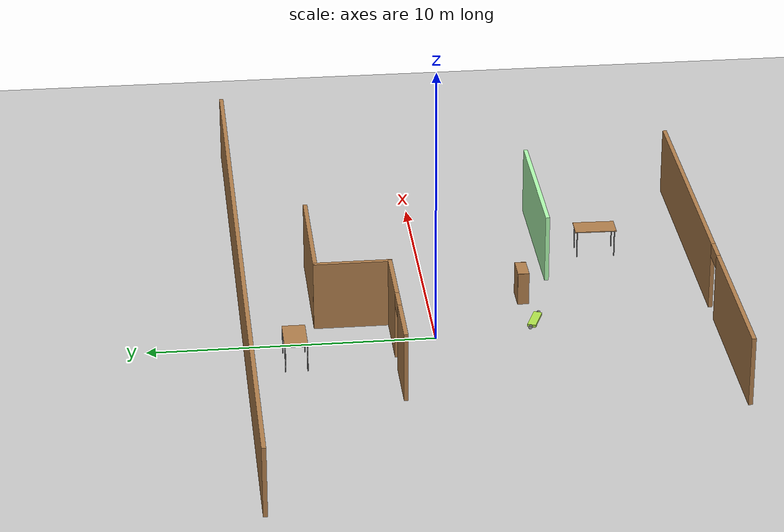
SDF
<sdf version="1.7">
 <world name="default">
  <model name="ground_plane">
   <static>1</static>
   <link name="link">
    <collision name="collision">
     <geometry><plane><normal>0 0 1</normal><size>100 100</size></plane></geometry>
     <surface>
      <contact><collide_bitmask>65535</collide_bitmask></contact>
      <friction><ode><mu>100</mu><mu2>50</mu2></ode></friction>
     </surface>
    </collision>
    <visual name="visual">
     <cast_shadows>0</cast_shadows>
     <geometry><plane><normal>0 0 1</normal><size>100 100</size></plane></geometry>
     <material>
      <script><uri>file://media/materials/scripts/gazebo.material</uri><name>Gazebo/Grey</name></script>
     </material>
    </visual>
   </link>
  </model>
  <model name="table">
   <model name="table">
    <static>1</static>
    <link name="link">
     <collision name="surface">
      <pose>0 0 1 0 -0 0</pose>
      <geometry><box><size>1.5 0.8 0.03</size></box></geometry>
      <surface><friction><ode><mu>0.6</mu><mu2>0.6</mu2></ode></friction></surface>
     </collision>
     <visual name="visual1">
      <pose>0 0 1 0 -0 0</pose>
      <geometry><box><size>1.5 0.8 0.03</size></box></geometry>
      <material>
       <script><uri>file://media/materials/scripts/gazebo.material</uri><name>Gazebo/Wood</name></script>
      </material>
     </visual>
     <collision name="front_left_leg">
      <pose>0.68 0.38 0.5 0 -0 0</pose>
      <geometry><cylinder><radius>0.02</radius><length>1</length></cylinder></geometry>
     </collision>
     <visual name="front_left_leg">
      <pose>0.68 0.38 0.5 0 -0 0</pose>
      <geometry><cylinder><radius>0.02</radius><length>1</length></cylinder></geometry>
      <material>
       <script><uri>file://media/materials/scripts/gazebo.material</uri><name>Gazebo/Grey</name></script>
      </material>
     </visual>
     <collision name="front_right_leg">
      <pose>0.68 -0.38 0.5 0 -0 0</pose>
      <geometry><cylinder><radius>0.02</radius><length>1</length></cylinder></geometry>
     </collision>
     <visual name="front_right_leg">
      <pose>0.68 -0.38 0.5 0 -0 0</pose>
      <geometry><cylinder><radius>0.02</radius><length>1</length></cylinder></geometry>
      <material>
       <script><uri>file://media/materials/scripts/gazebo.material</uri><name>Gazebo/Grey</name></script>
      </material>
     </visual>
     <collision name="back_right_leg">
      <pose>-0.68 -0.38 0.5 0 -0 0</pose>
      <geometry><cylinder><radius>0.02</radius><length>1</length></cylinder></geometry>
     </collision>
     <visual name="back_right_leg">
      <pose>-0.68 -0.38 0.5 0 -0 0</pose>
      <geometry><cylinder><radius>0.02</radius><length>1</length></cylinder></geometry>
      <material>
       <script><uri>file://media/materials/scripts/gazebo.material</uri><name>Gazebo/Grey</name></script>
      </material>
     </visual>
     <collision name="back_left_leg">
      <pose>-0.68 0.38 0.5 0 -0 0</pose>
      <geometry><cylinder><radius>0.02</radius><length>1</length></cylinder></geometry>
     </collision>
     <visual name="back_left_leg">
      <pose>-0.68 0.38 0.5 0 -0 0</pose>
      <geometry><cylinder><radius>0.02</radius><length>1</length></cylinder></geometry>
      <material>
       <script><uri>file://media/materials/scripts/gazebo.material</uri><name>Gazebo/Grey</name></script>
      </material>
     </visual>
    </link>
   </model>
   <static>0</static>
   <pose>-1.14837 4.95371 0 0 -0 0</pose>
  </model>
  <model name="table_clone">
   <model name="table">
    <static>1</static>
    <link name="link">
     <collision name="surface">
      <pose>0 0 1 0 -0 0</pose>
      <geometry><box><size>1.5 0.8 0.03</size></box></geometry>
      <surface><friction><ode><mu>0.6</mu><mu2>0.6</mu2></ode></friction></surface>
     </collision>
     <visual name="visual1">
      <pose>0 0 1 0 -0 0</pose>
      <geometry><box><size>1.5 0.8 0.03</size></box></geometry>
      <material>
       <script><uri>file://media/materials/scripts/gazebo.material</uri><name>Gazebo/Wood</name></script>
      </material>
     </visual>
     <collision name="front_left_leg">
      <pose>0.68 0.38 0.5 0 -0 0</pose>
      <geometry><cylinder><radius>0.02</radius><length>1</length></cylinder></geometry>
     </collision>
     <visual name="front_left_leg">
      <pose>0.68 0.38 0.5 0 -0 0</pose>
      <geometry><cylinder><radius>0.02</radius><length>1</length></cylinder></geometry>
      <material>
       <script><uri>file://media/materials/scripts/gazebo.material</uri><name>Gazebo/Grey</name></script>
      </material>
     </visual>
     <collision name="front_right_leg">
      <pose>0.68 -0.38 0.5 0 -0 0</pose>
      <geometry><cylinder><radius>0.02</radius><length>1</length></cylinder></geometry>
     </collision>
     <visual name="front_right_leg">
      <pose>0.68 -0.38 0.5 0 -0 0</pose>
      <geometry><cylinder><radius>0.02</radius><length>1</length></cylinder></geometry>
      <material>
       <script><uri>file://media/materials/scripts/gazebo.material</uri><name>Gazebo/Grey</name></script>
      </material>
     </visual>
     <collision name="back_right_leg">
      <pose>-0.68 -0.38 0.5 0 -0 0</pose>
      <geometry><cylinder><radius>0.02</radius><length>1</length></cylinder></geometry>
     </collision>
     <visual name="back_right_leg">
      <pose>-0.68 -0.38 0.5 0 -0 0</pose>
      <geometry><cylinder><radius>0.02</radius><length>1</length></cylinder></geometry>
      <material>
       <script><uri>file://media/materials/scripts/gazebo.material</uri><name>Gazebo/Grey</name></script>
      </material>
     </visual>
     <collision name="back_left_leg">
      <pose>-0.68 0.38 0.5 0 -0 0</pose>
      <geometry><cylinder><radius>0.02</radius><length>1</length></cylinder></geometry>
     </collision>
     <visual name="back_left_leg">
      <pose>-0.68 0.38 0.5 0 -0 0</pose>
      <geometry><cylinder><radius>0.02</radius><length>1</length></cylinder></geometry>
      <material>
       <script><uri>file://media/materials/scripts/gazebo.material</uri><name>Gazebo/Grey</name></script>
      </material>
     </visual>
    </link>
   </model>
   <static>0</static>
   <pose>5.99818 -6.4942 0 0 -0 1.5488</pose>
  </model>
  <model name="bookshelf">
   <model name="bookshelf">
    <static>1</static>
    <link name="link">
     <inertial><mass>1</mass></inertial>
     <collision name="back">
      <pose>0 0.005 0.6 0 -0 0</pose>
      <geometry><box><size>0.9 0.01 1.2</size></box></geometry>
     </collision>
     <visual name="visual1">
      <pose>0 0.005 0.6 0 -0 0</pose>
      <geometry><box><size>0.9 0.01 1.2</size></box></geometry>
      <material>
       <script><uri>file://media/materials/scripts/gazebo.material</uri><name>Gazebo/Wood</name></script>
      </material>
     </visual>
     <collision name="left_side">
      <pose>0.45 -0.195 0.6 0 -0 0</pose>
      <geometry><box><size>0.02 0.4 1.2</size></box></geometry>
     </collision>
     <visual name="visual2">
      <pose>0.45 -0.195 0.6 0 -0 0</pose>
      <geometry><box><size>0.02 0.4 1.2</size></box></geometry>
      <material>
       <script><uri>file://media/materials/scripts/gazebo.material</uri><name>Gazebo/Wood</name></script>
      </material>
     </visual>
     <collision name="right_side">
      <pose>-0.45 -0.195 0.6 0 -0 0</pose>
      <geometry><box><size>0.02 0.4 1.2</size></box></geometry>
     </collision>
     <visual name="visual3">
      <pose>-0.45 -0.195 0.6 0 -0 0</pose>
      <geometry><box><size>0.02 0.4 1.2</size></box></geometry>
      <material>
       <script><uri>file://media/materials/scripts/gazebo.material</uri><name>Gazebo/Wood</name></script>
      </material>
     </visual>
     <collision name="bottom">
      <pose>0 -0.195 0.03 0 -0 0</pose>
      <geometry><box><size>0.88 0.4 0.06</size></box></geometry>
     </collision>
     <visual name="visual4">
      <pose>0 -0.195 0.03 0 -0 0</pose>
      <geometry><box><size>0.88 0.4 0.06</size></box></geometry>
      <material>
       <script><uri>file://media/materials/scripts/gazebo.material</uri><name>Gazebo/Wood</name></script>
      </material>
     </visual>
     <collision name="top">
      <pose>0 -0.195 1.19 0 -0 0</pose>
      <geometry><box><size>0.88 0.4 0.02</size></box></geometry>
     </collision>
     <visual name="visual5">
      <pose>0 -0.195 1.19 0 -0 0</pose>
      <geometry><box><size>0.88 0.4 0.02</size></box></geometry>
      <material>
       <script><uri>file://media/materials/scripts/gazebo.material</uri><name>Gazebo/Wood</name></script>
      </material>
     </visual>
     <collision name="low_shelf">
      <pose>0 -0.195 0.43 0 -0 0</pose>
      <geometry><box><size>0.88 0.4 0.02</size></box></geometry>
     </collision>
     <visual name="visual6">
      <pose>0 -0.195 0.43 0 -0 0</pose>
      <geometry><box><size>0.88 0.4 0.02</size></box></geometry>
      <material>
       <script><uri>file://media/materials/scripts/gazebo.material</uri><name>Gazebo/Wood</name></script>
      </material>
     </visual>
     <collision name="high_shelf">
      <pose>0 -0.195 0.8 0 -0 0</pose>
      <geometry><box><size>0.88 0.4 0.02</size></box></geometry>
     </collision>
     <visual name="visual7">
      <pose>0 -0.195 0.8 0 -0 0</pose>
      <geometry><box><size>0.88 0.4 0.02</size></box></geometry>
      <material>
       <script><uri>file://media/materials/scripts/gazebo.material</uri><name>Gazebo/Wood</name></script>
      </material>
     </visual>
    </link>
    <pose>-4e-06 4e-06 0 0 -0 0</pose>
   </model>
   <static>0</static>
   <pose>2.66139 -3.16627 0 0 -0 0</pose>
  </model>
  <model name="floorplan">
   <link name="Wall_21">
    <pose>2.55 8.24393 0 0 -0 3.14159</pose>
    <visual name="Wall_21_Visual">
     <pose>0 0 1.25 0 -0 0</pose>
     <geometry><box><size>26.5 0.15 2.5</size></box></geometry>
     <material>
      <script><uri>file://media/materials/scripts/gazebo.material</uri><name>Gazebo/Wood</name></script>
      <ambient>0.435294 0.796078 0.67451 1</ambient>
      <shader type="pixel"/>
     </material>
     <meta><layer>0</layer></meta>
    </visual>
    <collision name="Wall_21_Collision">
     <pose>0 0 1.25 0 -0 0</pose>
     <geometry><box><size>26.5 0.15 2.5</size></box></geometry>
     <surface>
      <friction>
       <ode><mu>1</mu><mu2>1</mu2><fdir1>0 0 0</fdir1><slip1>0</slip1><slip2>0</slip2></ode>
       <torsional>
        <coefficient>1</coefficient>
        <patch_radius>0</patch_radius>
        <surface_radius>0</surface_radius>
        <use_patch_radius>1</use_patch_radius>
        <ode><slip>0</slip></ode>
       </torsional>
      </friction>
      <bounce><restitution_coefficient>0</restitution_coefficient><threshold>1e+06</threshold></bounce>
      <contact>
       <collide_without_contact>0</collide_without_contact>
       <collide_without_contact_bitmask>1</collide_without_contact_bitmask>
       <collide_bitmask>1</collide_bitmask>
       <ode>
        <soft_cfm>0</soft_cfm>
        <soft_erp>0.2</soft_erp>
        <kp>1e+13</kp>
        <kd>1</kd>
        <max_vel>0.01</max_vel>
        <min_depth>0</min_depth>
       </ode>
       <bullet>
        <split_impulse>1</split_impulse>
        <split_impulse_penetration_threshold>-0.01</split_impulse_penetration_threshold>
        <soft_cfm>0</soft_cfm>
        <soft_erp>0.2</soft_erp>
        <kp>1e+13</kp>
        <kd>1</kd>
       </bullet>
      </contact>
     </surface>
    </collision>
   </link>
   <link name="Wall_34">
    <pose>-1.13815 3.11707 0 0 -0 0</pose>
    <visual name="Wall_34_Visual_0">
     <pose>-1.68834 0 1.25 0 -0 0</pose>
     <geometry><box><size>2.12332 0.15 2.5</size></box></geometry>
     <material>
      <script><uri>file://media/materials/scripts/gazebo.material</uri><name>Gazebo/Wood</name></script>
      <ambient>1 1 1 1</ambient>
      <shader type="pixel"/>
     </material>
     <meta><layer>0</layer></meta>
    </visual>
    <visual name="Wall_34_Visual_1">
     <pose>1.51166 0 1.25 0 -0 0</pose>
     <geometry><box><size>2.47668 0.15 2.5</size></box></geometry>
     <material>
      <script><uri>file://media/materials/scripts/gazebo.material</uri><name>Gazebo/Wood</name></script>
      <ambient>1 1 1 1</ambient>
      <shader type="pixel"/>
     </material>
     <meta><layer>0</layer></meta>
    </visual>
    <visual name="Wall_34_Visual_2">
     <pose>-0.17668 0 2.25 0 -0 0</pose>
     <geometry><box><size>0.9 0.15 0.5</size></box></geometry>
     <material>
      <script><uri>file://media/materials/scripts/gazebo.material</uri><name>Gazebo/Wood</name></script>
      <ambient>1 1 1 1</ambient>
      <shader type="pixel"/>
     </material>
     <meta><layer>0</layer></meta>
    </visual>
    <collision name="Wall_34_Collision_0">
     <pose>-1.68834 0 1.25 0 -0 0</pose>
     <geometry><box><size>2.12332 0.15 2.5</size></box></geometry>
     <surface>
      <friction>
       <ode><mu>1</mu><mu2>1</mu2><fdir1>0 0 0</fdir1><slip1>0</slip1><slip2>0</slip2></ode>
       <torsional>
        <coefficient>1</coefficient>
        <patch_radius>0</patch_radius>
        <surface_radius>0</surface_radius>
        <use_patch_radius>1</use_patch_radius>
        <ode><slip>0</slip></ode>
       </torsional>
      </friction>
      <bounce><restitution_coefficient>0</restitution_coefficient><threshold>1e+06</threshold></bounce>
      <contact>
       <collide_without_contact>0</collide_without_contact>
       <collide_without_contact_bitmask>1</collide_without_contact_bitmask>
       <collide_bitmask>1</collide_bitmask>
       <ode>
        <soft_cfm>0</soft_cfm>
        <soft_erp>0.2</soft_erp>
        <kp>1e+13</kp>
        <kd>1</kd>
        <max_vel>0.01</max_vel>
        <min_depth>0</min_depth>
       </ode>
       <bullet>
        <split_impulse>1</split_impulse>
        <split_impulse_penetration_threshold>-0.01</split_impulse_penetration_threshold>
        <soft_cfm>0</soft_cfm>
        <soft_erp>0.2</soft_erp>
        <kp>1e+13</kp>
        <kd>1</kd>
       </bullet>
      </contact>
     </surface>
    </collision>
    <collision name="Wall_34_Collision_1">
     <pose>1.51166 0 1.25 0 -0 0</pose>
     <geometry><box><size>2.47668 0.15 2.5</size></box></geometry>
     <surface>
      <friction>
       <ode><mu>1</mu><mu2>1</mu2><fdir1>0 0 0</fdir1><slip1>0</slip1><slip2>0</slip2></ode>
       <torsional>
        <coefficient>1</coefficient>
        <patch_radius>0</patch_radius>
        <surface_radius>0</surface_radius>
        <use_patch_radius>1</use_patch_radius>
        <ode><slip>0</slip></ode>
       </torsional>
      </friction>
      <bounce><restitution_coefficient>0</restitution_coefficient><threshold>1e+06</threshold></bounce>
      <contact>
       <collide_without_contact>0</collide_without_contact>
       <collide_without_contact_bitmask>1</collide_without_contact_bitmask>
       <collide_bitmask>1</collide_bitmask>
       <ode>
        <soft_cfm>0</soft_cfm>
        <soft_erp>0.2</soft_erp>
        <kp>1e+13</kp>
        <kd>1</kd>
        <max_vel>0.01</max_vel>
        <min_depth>0</min_depth>
       </ode>
       <bullet>
        <split_impulse>1</split_impulse>
        <split_impulse_penetration_threshold>-0.01</split_impulse_penetration_threshold>
        <soft_cfm>0</soft_cfm>
        <soft_erp>0.2</soft_erp>
        <kp>1e+13</kp>
        <kd>1</kd>
       </bullet>
      </contact>
     </surface>
    </collision>
    <collision name="Wall_34_Collision_2">
     <pose>-0.17668 0 2.25 0 -0 0</pose>
     <geometry><box><size>0.9 0.15 0.5</size></box></geometry>
     <surface>
      <friction>
       <ode><mu>1</mu><mu2>1</mu2><fdir1>0 0 0</fdir1><slip1>0</slip1><slip2>0</slip2></ode>
       <torsional>
        <coefficient>1</coefficient>
        <patch_radius>0</patch_radius>
        <surface_radius>0</surface_radius>
        <use_patch_radius>1</use_patch_radius>
        <ode><slip>0</slip></ode>
       </torsional>
      </friction>
      <bounce><restitution_coefficient>0</restitution_coefficient><threshold>1e+06</threshold></bounce>
      <contact>
       <collide_without_contact>0</collide_without_contact>
       <collide_without_contact_bitmask>1</collide_without_contact_bitmask>
       <collide_bitmask>1</collide_bitmask>
       <ode>
        <soft_cfm>0</soft_cfm>
        <soft_erp>0.2</soft_erp>
        <kp>1e+13</kp>
        <kd>1</kd>
        <max_vel>0.01</max_vel>
        <min_depth>0</min_depth>
       </ode>
       <bullet>
        <split_impulse>1</split_impulse>
        <split_impulse_penetration_threshold>-0.01</split_impulse_penetration_threshold>
        <soft_cfm>0</soft_cfm>
        <soft_erp>0.2</soft_erp>
        <kp>1e+13</kp>
        <kd>1</kd>
       </bullet>
      </contact>
     </surface>
    </collision>
   </link>
   <link name="Wall_35">
    <pose>1.53685 4.41707 0 0 -0 1.5708</pose>
    <visual name="Wall_35_Visual">
     <pose>0 0 1.25 0 -0 0</pose>
     <geometry><box><size>2.75 0.15 2.5</size></box></geometry>
     <material>
      <script><uri>file://media/materials/scripts/gazebo.material</uri><name>Gazebo/Wood</name></script>
      <ambient>1 1 1 1</ambient>
      <shader type="pixel"/>
     </material>
     <meta><layer>0</layer></meta>
    </visual>
    <collision name="Wall_35_Collision">
     <pose>0 0 1.25 0 -0 0</pose>
     <geometry><box><size>2.75 0.15 2.5</size></box></geometry>
     <surface>
      <friction>
       <ode><mu>1</mu><mu2>1</mu2><fdir1>0 0 0</fdir1><slip1>0</slip1><slip2>0</slip2></ode>
       <torsional>
        <coefficient>1</coefficient>
        <patch_radius>0</patch_radius>
        <surface_radius>0</surface_radius>
        <use_patch_radius>1</use_patch_radius>
        <ode><slip>0</slip></ode>
       </torsional>
      </friction>
      <bounce><restitution_coefficient>0</restitution_coefficient><threshold>1e+06</threshold></bounce>
      <contact>
       <collide_without_contact>0</collide_without_contact>
       <collide_without_contact_bitmask>1</collide_without_contact_bitmask>
       <collide_bitmask>1</collide_bitmask>
       <ode>
        <soft_cfm>0</soft_cfm>
        <soft_erp>0.2</soft_erp>
        <kp>1e+13</kp>
        <kd>1</kd>
        <max_vel>0.01</max_vel>
        <min_depth>0</min_depth>
       </ode>
       <bullet>
        <split_impulse>1</split_impulse>
        <split_impulse_penetration_threshold>-0.01</split_impulse_penetration_threshold>
        <soft_cfm>0</soft_cfm>
        <soft_erp>0.2</soft_erp>
        <kp>1e+13</kp>
        <kd>1</kd>
       </bullet>
      </contact>
     </surface>
    </collision>
   </link>
   <link name="Wall_36">
    <pose>3.83685 5.71707 0 0 -0 0</pose>
    <visual name="Wall_36_Visual">
     <pose>0 0 1.25 0 -0 0</pose>
     <geometry><box><size>4.75 0.15 2.5</size></box></geometry>
     <material>
      <script><uri>file://media/materials/scripts/gazebo.material</uri><name>Gazebo/Wood</name></script>
      <ambient>1 1 1 1</ambient>
      <shader type="pixel"/>
     </material>
     <meta><layer>0</layer></meta>
    </visual>
    <collision name="Wall_36_Collision">
     <pose>0 0 1.25 0 -0 0</pose>
     <geometry><box><size>4.75 0.15 2.5</size></box></geometry>
     <surface>
      <friction>
       <ode><mu>1</mu><mu2>1</mu2><fdir1>0 0 0</fdir1><slip1>0</slip1><slip2>0</slip2></ode>
       <torsional>
        <coefficient>1</coefficient>
        <patch_radius>0</patch_radius>
        <surface_radius>0</surface_radius>
        <use_patch_radius>1</use_patch_radius>
        <ode><slip>0</slip></ode>
       </torsional>
      </friction>
      <bounce><restitution_coefficient>0</restitution_coefficient><threshold>1e+06</threshold></bounce>
      <contact>
       <collide_without_contact>0</collide_without_contact>
       <collide_without_contact_bitmask>1</collide_without_contact_bitmask>
       <collide_bitmask>1</collide_bitmask>
       <ode>
        <soft_cfm>0</soft_cfm>
        <soft_erp>0.2</soft_erp>
        <kp>1e+13</kp>
        <kd>1</kd>
        <max_vel>0.01</max_vel>
        <min_depth>0</min_depth>
       </ode>
       <bullet>
        <split_impulse>1</split_impulse>
        <split_impulse_penetration_threshold>-0.01</split_impulse_penetration_threshold>
        <soft_cfm>0</soft_cfm>
        <soft_erp>0.2</soft_erp>
        <kp>1e+13</kp>
        <kd>1</kd>
       </bullet>
      </contact>
     </surface>
    </collision>
   </link>
   <link name="Wall_43">
    <pose>7.10197 -2.78983 0 0 -0 3.14159</pose>
    <inertial>
     <mass>1</mass>
     <inertia><ixx>1</ixx><ixy>0</ixy><ixz>0</ixz><iyy>1</iyy><iyz>0</iyz><izz>1</izz></inertia>
    </inertial>
    <visual name="Wall_43_Visual">
     <pose>0 0 1.25 0 -0 0</pose>
     <geometry><box><size>5.75 0.15 2.5</size></box></geometry>
     <material>
      <script><uri>file://media/materials/scripts/gazebo.material</uri><name>Gazebo/Grey</name></script>
      <ambient>1 1 1 1</ambient>
      <shader type="pixel"><normal_map>__default__</normal_map></shader>
      <diffuse>0.7 1 0.7 1</diffuse>
      <specular>0.01 1 0.01 1</specular>
      <emissive>0 1 0 1</emissive>
     </material>
     <meta><layer>0</layer></meta>
    </visual>
    <collision name="Wall_43_Collision">
     <pose>0 0 1.25 0 -0 0</pose>
     <geometry><box><size>5.75 0.15 2.5</size></box></geometry>
     <surface>
      <friction>
       <ode><mu>1</mu><mu2>1</mu2><fdir1>0 0 0</fdir1><slip1>0</slip1><slip2>0</slip2></ode>
       <torsional>
        <coefficient>1</coefficient>
        <patch_radius>0</patch_radius>
        <surface_radius>0</surface_radius>
        <use_patch_radius>1</use_patch_radius>
        <ode><slip>0</slip></ode>
       </torsional>
      </friction>
      <bounce><restitution_coefficient>0</restitution_coefficient><threshold>1e+06</threshold></bounce>
      <contact>
       <collide_without_contact>0</collide_without_contact>
       <collide_without_contact_bitmask>1</collide_without_contact_bitmask>
       <collide_bitmask>1</collide_bitmask>
       <ode>
        <soft_cfm>0</soft_cfm>
        <soft_erp>0.2</soft_erp>
        <kp>1e+13</kp>
        <kd>1</kd>
        <max_vel>0.01</max_vel>
        <min_depth>0</min_depth>
       </ode>
       <bullet>
        <split_impulse>1</split_impulse>
        <split_impulse_penetration_threshold>-0.01</split_impulse_penetration_threshold>
        <soft_cfm>0</soft_cfm>
        <soft_erp>0.2</soft_erp>
        <kp>1e+13</kp>
        <kd>1</kd>
       </bullet>
      </contact>
     </surface>
    </collision>
   </link>
   <link name="Wall_7">
    <pose>2.86483 -8.24393 0 0 -0 0</pose>
    <visual name="Wall_7_Visual_0">
     <pose>-5.20927 0 1.25 0 -0 0</pose>
     <geometry><box><size>6.08146 0.15 2.5</size></box></geometry>
     <material>
      <script><uri>file://media/materials/scripts/gazebo.material</uri><name>Gazebo/Wood</name></script>
      <ambient>0.996078 0.47451 0.0196078 1</ambient>
      <shader type="pixel"/>
     </material>
     <meta><layer>0</layer></meta>
    </visual>
    <visual name="Wall_7_Visual_1">
     <pose>3.49073 0 1.25 0 -0 0</pose>
     <geometry><box><size>9.51854 0.15 2.5</size></box></geometry>
     <material>
      <script><uri>file://media/materials/scripts/gazebo.material</uri><name>Gazebo/Wood</name></script>
      <ambient>0.996078 0.47451 0.0196078 1</ambient>
      <shader type="pixel"/>
     </material>
     <meta><layer>0</layer></meta>
    </visual>
    <visual name="Wall_7_Visual_2">
     <pose>-1.71854 0 2.25 0 -0 0</pose>
     <geometry><box><size>0.9 0.15 0.5</size></box></geometry>
     <material>
      <script><uri>file://media/materials/scripts/gazebo.material</uri><name>Gazebo/Wood</name></script>
      <ambient>0.996078 0.47451 0.0196078 1</ambient>
      <shader type="pixel"/>
     </material>
     <meta><layer>0</layer></meta>
    </visual>
    <collision name="Wall_7_Collision_0">
     <pose>-5.20927 0 1.25 0 -0 0</pose>
     <geometry><box><size>6.08146 0.15 2.5</size></box></geometry>
     <surface>
      <friction>
       <ode><mu>1</mu><mu2>1</mu2><fdir1>0 0 0</fdir1><slip1>0</slip1><slip2>0</slip2></ode>
       <torsional>
        <coefficient>1</coefficient>
        <patch_radius>0</patch_radius>
        <surface_radius>0</surface_radius>
        <use_patch_radius>1</use_patch_radius>
        <ode><slip>0</slip></ode>
       </torsional>
      </friction>
      <bounce><restitution_coefficient>0</restitution_coefficient><threshold>1e+06</threshold></bounce>
      <contact>
       <collide_without_contact>0</collide_without_contact>
       <collide_without_contact_bitmask>1</collide_without_contact_bitmask>
       <collide_bitmask>1</collide_bitmask>
       <ode>
        <soft_cfm>0</soft_cfm>
        <soft_erp>0.2</soft_erp>
        <kp>1e+13</kp>
        <kd>1</kd>
        <max_vel>0.01</max_vel>
        <min_depth>0</min_depth>
       </ode>
       <bullet>
        <split_impulse>1</split_impulse>
        <split_impulse_penetration_threshold>-0.01</split_impulse_penetration_threshold>
        <soft_cfm>0</soft_cfm>
        <soft_erp>0.2</soft_erp>
        <kp>1e+13</kp>
        <kd>1</kd>
       </bullet>
      </contact>
     </surface>
    </collision>
    <collision name="Wall_7_Collision_1">
     <pose>3.49073 0 1.25 0 -0 0</pose>
     <geometry><box><size>9.51854 0.15 2.5</size></box></geometry>
     <surface>
      <friction>
       <ode><mu>1</mu><mu2>1</mu2><fdir1>0 0 0</fdir1><slip1>0</slip1><slip2>0</slip2></ode>
       <torsional>
        <coefficient>1</coefficient>
        <patch_radius>0</patch_radius>
        <surface_radius>0</surface_radius>
        <use_patch_radius>1</use_patch_radius>
        <ode><slip>0</slip></ode>
       </torsional>
      </friction>
      <bounce><restitution_coefficient>0</restitution_coefficient><threshold>1e+06</threshold></bounce>
      <contact>
       <collide_without_contact>0</collide_without_contact>
       <collide_without_contact_bitmask>1</collide_without_contact_bitmask>
       <collide_bitmask>1</collide_bitmask>
       <ode>
        <soft_cfm>0</soft_cfm>
        <soft_erp>0.2</soft_erp>
        <kp>1e+13</kp>
        <kd>1</kd>
        <max_vel>0.01</max_vel>
        <min_depth>0</min_depth>
       </ode>
       <bullet>
        <split_impulse>1</split_impulse>
        <split_impulse_penetration_threshold>-0.01</split_impulse_penetration_threshold>
        <soft_cfm>0</soft_cfm>
        <soft_erp>0.2</soft_erp>
        <kp>1e+13</kp>
        <kd>1</kd>
       </bullet>
      </contact>
     </surface>
    </collision>
    <collision name="Wall_7_Collision_2">
     <pose>-1.71854 0 2.25 0 -0 0</pose>
     <geometry><box><size>0.9 0.15 0.5</size></box></geometry>
     <surface>
      <friction>
       <ode><mu>1</mu><mu2>1</mu2><fdir1>0 0 0</fdir1><slip1>0</slip1><slip2>0</slip2></ode>
       <torsional>
        <coefficient>1</coefficient>
        <patch_radius>0</patch_radius>
        <surface_radius>0</surface_radius>
        <use_patch_radius>1</use_patch_radius>
        <ode><slip>0</slip></ode>
       </torsional>
      </friction>
      <bounce><restitution_coefficient>0</restitution_coefficient><threshold>1e+06</threshold></bounce>
      <contact>
       <collide_without_contact>0</collide_without_contact>
       <collide_without_contact_bitmask>1</collide_without_contact_bitmask>
       <collide_bitmask>1</collide_bitmask>
       <ode>
        <soft_cfm>0</soft_cfm>
        <soft_erp>0.2</soft_erp>
        <kp>1e+13</kp>
        <kd>1</kd>
        <max_vel>0.01</max_vel>
        <min_depth>0</min_depth>
       </ode>
       <bullet>
        <split_impulse>1</split_impulse>
        <split_impulse_penetration_threshold>-0.01</split_impulse_penetration_threshold>
        <soft_cfm>0</soft_cfm>
        <soft_erp>0.2</soft_erp>
        <kp>1e+13</kp>
        <kd>1</kd>
       </bullet>
      </contact>
     </surface>
    </collision>
   </link>
   <static>1</static>
   <pose>-0.30602 -1.65373 0 0 -0 0</pose>
  </model>
  <model name="robo_clone">
   <link name="link_0">
    <inertial>
     <mass>1</mass>
     <inertia>
      <ixx>0.166667</ixx>
      <ixy>0</ixy>
      <ixz>0</ixz>
      <iyy>0.166667</iyy>
      <iyz>0</iyz>
      <izz>0.166667</izz>
     </inertia>
    </inertial>
    <pose>-0.032766 -0.028472 -0.116438 0 0.196032 0</pose>
    <visual name="visual">
     <pose>0 0 0.2 0 -0 0</pose>
     <geometry><box><size>0.3 1 0.1</size></box></geometry>
     <material>
      <lighting>1</lighting>
      <script><uri>file://media/materials/scripts/gazebo.material</uri><name>Gazebo/Grey</name></script>
      <shader type="pixel"><normal_map>__default__</normal_map></shader>
      <ambient>0.7 0.9 0.3 1</ambient>
      <diffuse>0.7 0.7 0.7 1</diffuse>
      <specular>0.01 0.01 0.01 1</specular>
      <emissive>0 0 0 1</emissive>
     </material>
    </visual>
    <collision name="collision">
     <pose>0 0 0.2 0 -0 0</pose>
     <geometry><box><size>0.3 1 0.1</size></box></geometry>
     <surface>
      <friction>
       <ode><mu>1</mu><mu2>1</mu2><fdir1>0 0 0</fdir1><slip1>0</slip1><slip2>0</slip2></ode>
       <torsional>
        <coefficient>1</coefficient>
        <patch_radius>0</patch_radius>
        <surface_radius>0</surface_radius>
        <use_patch_radius>1</use_patch_radius>
        <ode><slip>0</slip></ode>
       </torsional>
      </friction>
      <bounce><restitution_coefficient>0</restitution_coefficient><threshold>1e+06</threshold></bounce>
      <contact>
       <collide_without_contact>0</collide_without_contact>
       <collide_without_contact_bitmask>1</collide_without_contact_bitmask>
       <collide_bitmask>1</collide_bitmask>
       <ode>
        <soft_cfm>0</soft_cfm>
        <soft_erp>0.2</soft_erp>
        <kp>1e+13</kp>
        <kd>1</kd>
        <max_vel>0.01</max_vel>
        <min_depth>0</min_depth>
       </ode>
       <bullet>
        <split_impulse>1</split_impulse>
        <split_impulse_penetration_threshold>-0.01</split_impulse_penetration_threshold>
        <soft_cfm>0</soft_cfm>
        <soft_erp>0.2</soft_erp>
        <kp>1e+13</kp>
        <kd>1</kd>
       </bullet>
      </contact>
     </surface>
    </collision>
   </link>
   <link name="link_1">
    <inertial>
     <mass>0.00175003</mass>
     <inertia>
      <ixx>3.42e-06</ixx>
      <ixy>0</ixy>
      <ixz>0</ixz>
      <iyy>3.42e-06</iyy>
      <iyz>0</iyz>
      <izz>3.67e-06</izz>
     </inertia>
    </inertial>
    <pose>-0.019732 -0.563709 0.054101 -1.63482 0.167007 -0.010657</pose>
    <visual name="visual">
     <geometry><cylinder><radius>0.0647355</radius><length>0.104356</length></cylinder></geometry>
     <material>
      <lighting>1</lighting>
      <script><uri>file://media/materials/scripts/gazebo.material</uri><name>Gazebo/Grey</name></script>
      <shader type="pixel"><normal_map>__default__</normal_map></shader>
      <emissive>0 0 0 1</emissive>
      <ambient>0.3 0.3 0.3 1</ambient>
      <diffuse>0.7 0.7 0.7 1</diffuse>
      <specular>0.01 0.01 0.01 1</specular>
     </material>
    </visual>
    <collision name="collision">
     <geometry><cylinder><radius>0.064735</radius><length>0.104356</length></cylinder></geometry>
     <surface>
      <friction>
       <ode><mu>1</mu><mu2>1</mu2><fdir1>0 0 0</fdir1><slip1>0</slip1><slip2>0</slip2></ode>
       <torsional>
        <coefficient>1</coefficient>
        <patch_radius>0</patch_radius>
        <surface_radius>0</surface_radius>
        <use_patch_radius>1</use_patch_radius>
        <ode><slip>0</slip></ode>
       </torsional>
      </friction>
      <bounce><restitution_coefficient>0</restitution_coefficient><threshold>1e+06</threshold></bounce>
      <contact>
       <collide_without_contact>0</collide_without_contact>
       <collide_without_contact_bitmask>1</collide_without_contact_bitmask>
       <collide_bitmask>1</collide_bitmask>
       <ode>
        <soft_cfm>0</soft_cfm>
        <soft_erp>0.2</soft_erp>
        <kp>1e+13</kp>
        <kd>1</kd>
        <max_vel>0.01</max_vel>
        <min_depth>0</min_depth>
       </ode>
       <bullet>
        <split_impulse>1</split_impulse>
        <split_impulse_penetration_threshold>-0.01</split_impulse_penetration_threshold>
        <soft_cfm>0</soft_cfm>
        <soft_erp>0.2</soft_erp>
        <kp>1e+13</kp>
        <kd>1</kd>
       </bullet>
      </contact>
     </surface>
    </collision>
   </link>
   <link name="link_1_clone">
    <inertial>
     <mass>0.00175003</mass>
     <inertia>
      <ixx>3.42164e-06</ixx>
      <ixy>0</ixy>
      <ixz>0</ixz>
      <iyy>3.42164e-06</iyy>
      <iyz>0</iyz>
      <izz>3.66691e-06</izz>
     </inertia>
    </inertial>
    <pose>0.007144 0.539571 0.065663 -1.63393 -0 0</pose>
    <visual name="visual">
     <geometry><cylinder><radius>0.0647355</radius><length>0.104356</length></cylinder></geometry>
     <material>
      <lighting>1</lighting>
      <script><uri>file://media/materials/scripts/gazebo.material</uri><name>Gazebo/Grey</name></script>
      <shader type="pixel"/>
      <emissive>0 0 0 1</emissive>
     </material>
    </visual>
    <collision name="collision">
     <geometry><cylinder><radius>0.064736</radius><length>0.104356</length></cylinder></geometry>
     <surface>
      <friction>
       <ode><mu>1</mu><mu2>1</mu2><fdir1>0 0 0</fdir1><slip1>0</slip1><slip2>0</slip2></ode>
       <torsional>
        <coefficient>1</coefficient>
        <patch_radius>0</patch_radius>
        <surface_radius>0</surface_radius>
        <use_patch_radius>1</use_patch_radius>
        <ode><slip>0</slip></ode>
       </torsional>
      </friction>
      <bounce><restitution_coefficient>0</restitution_coefficient><threshold>1e+06</threshold></bounce>
      <contact>
       <collide_without_contact>0</collide_without_contact>
       <collide_without_contact_bitmask>1</collide_without_contact_bitmask>
       <collide_bitmask>1</collide_bitmask>
       <ode>
        <soft_cfm>0</soft_cfm>
        <soft_erp>0.2</soft_erp>
        <kp>1e+13</kp>
        <kd>1</kd>
        <max_vel>0.01</max_vel>
        <min_depth>0</min_depth>
       </ode>
       <bullet>
        <split_impulse>1</split_impulse>
        <split_impulse_penetration_threshold>-0.01</split_impulse_penetration_threshold>
        <soft_cfm>0</soft_cfm>
        <soft_erp>0.2</soft_erp>
        <kp>1e+13</kp>
        <kd>1</kd>
       </bullet>
      </contact>
     </surface>
    </collision>
   </link>
   <joint name="link_0_JOINT_0" type="revolute">
    <parent>link_0</parent>
    <child>link_1</child>
    <axis>
     <xyz>0 0 1</xyz>
     <limit>
      <lower>-1.79769e+308</lower>
      <upper>1.79769e+308</upper>
      <effort>-1</effort>
      <velocity>-1</velocity>
     </limit>
     <dynamics>
      <spring_reference>0</spring_reference>
      <spring_stiffness>0</spring_stiffness>
      <damping>0</damping>
      <friction>0</friction>
     </dynamics>
    </axis>
    <physics>
     <ode><limit><cfm>0</cfm><erp>0.2</erp></limit><suspension><cfm>0</cfm><erp>0.2</erp></suspension></ode>
    </physics>
   </joint>
   <joint name="link_0_JOINT_1" type="revolute">
    <parent>link_0</parent>
    <child>link_1_clone</child>
    <axis>
     <xyz>0 0 1</xyz>
     <limit>
      <lower>-1.79769e+308</lower>
      <upper>1.79769e+308</upper>
      <effort>-1</effort>
      <velocity>-1</velocity>
     </limit>
     <dynamics>
      <spring_reference>0</spring_reference>
      <spring_stiffness>0</spring_stiffness>
      <damping>0</damping>
      <friction>0</friction>
     </dynamics>
    </axis>
    <physics>
     <ode><limit><cfm>0</cfm><erp>0.2</erp></limit><suspension><cfm>0</cfm><erp>0.2</erp></suspension></ode>
    </physics>
   </joint>
   <static>0</static>
   <pose>0.877792 -3.59602 0.00966 -0.014331 -0.164166 -1.93156</pose>
  </model>
 </world>
</sdf>
